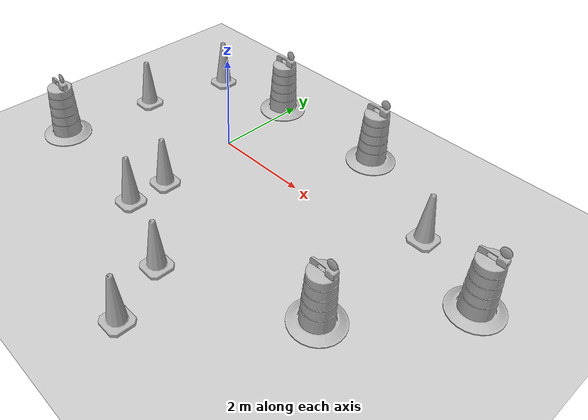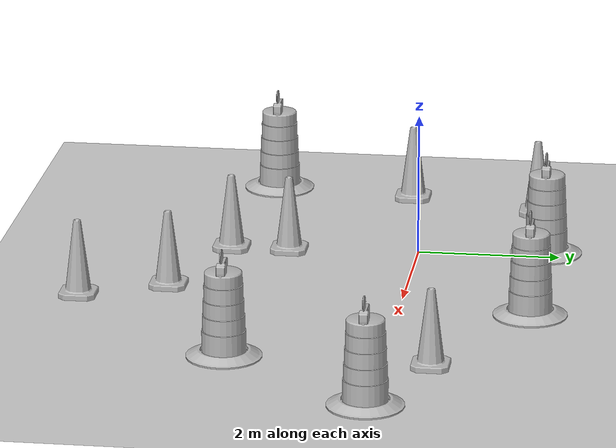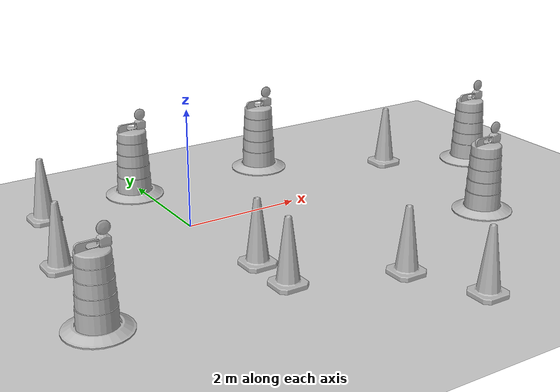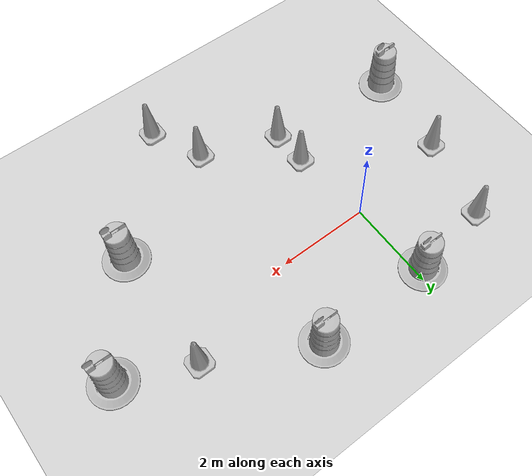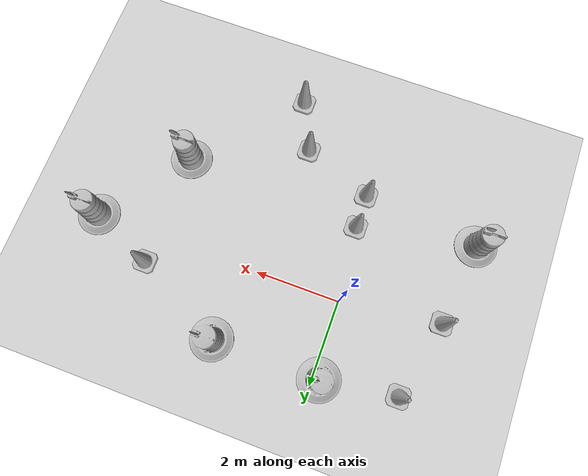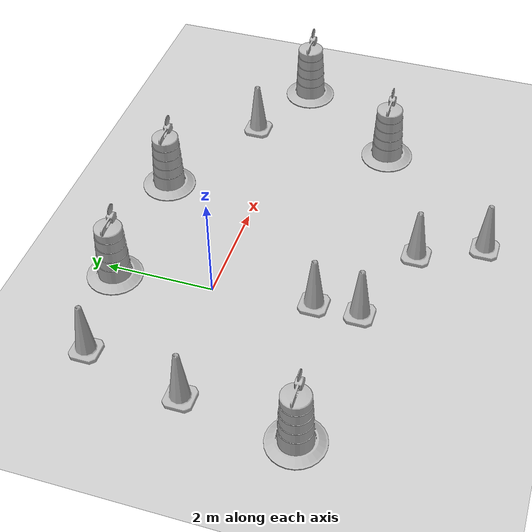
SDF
<sdf version="1.7">
 <world name="default">
  <light name="sun" type="directional">
   <pose>0 0 10 0 -0 0</pose>
   <diffuse>0.8 0.8 0.8 1</diffuse>
   <specular>0.2 0.2 0.2 1</specular>
   <attenuation>
    <range>1000</range>
    <constant>0.9</constant>
    <linear>0.01</linear>
    <quadratic>0.001</quadratic>
   </attenuation>
   <direction>-0.5 0.1 -0.9</direction>
   <spot><inner_angle>0</inner_angle><outer_angle>0</outer_angle><falloff>0</falloff></spot>
  </light>
  <model name="ground_plane">
   <static>1</static>
   <link name="link">
    <collision name="collision">
     <geometry><plane><normal>0 0 1</normal><size>100 100</size></plane></geometry>
     <surface>
      <contact><collide_bitmask>65535</collide_bitmask></contact>
      <friction><ode><mu>100</mu><mu2>50</mu2></ode></friction>
     </surface>
    </collision>
    <visual name="visual">
     <cast_shadows>0</cast_shadows>
     <geometry><plane><normal>0 0 1</normal><size>100 100</size></plane></geometry>
     <material>
      <script><uri>file://media/materials/scripts/gazebo.material</uri><name>Gazebo/Grey</name></script>
     </material>
    </visual>
   </link>
  </model>
  <gravity>0 0 -9.8</gravity>
  <magnetic_field>6e-06 2.3e-05 -4.2e-05</magnetic_field>
  <atmosphere type="adiabatic"/>
  <physics type="ode">
   <max_step_size>0.001</max_step_size>
   <real_time_factor>1</real_time_factor>
   <real_time_update_rate>1000</real_time_update_rate>
  </physics>
  <scene><ambient>0.4 0.4 0.4 1</ambient><background>0.7 0.7 0.7 1</background><shadows>1</shadows></scene>
  <audio><device>default</device></audio>
  <spherical_coordinates>
   <surface_model>EARTH_WGS84</surface_model>
   <latitude_deg>0</latitude_deg>
   <longitude_deg>0</longitude_deg>
   <elevation>0</elevation>
   <heading_deg>0</heading_deg>
  </spherical_coordinates>
  <model name="Construction Barrel">
   <link name="link">
    <inertial>
     <pose>0 0 0.4 0 -0 0</pose>
     <mass>500</mass>
     <inertia><ixx>51.2096</ixx><iyy>51.2096</iyy><izz>25</izz><ixy>0</ixy><ixz>0</ixz><iyz>0</iyz></inertia>
    </inertial>
    <collision name="collision">
     <geometry><mesh><uri>model://construction_barrel/meshes/construction_barrel.dae</uri></mesh></geometry>
    </collision>
    <visual name="visual">
     <geometry><mesh><uri>model://construction_barrel/meshes/construction_barrel.dae</uri></mesh></geometry>
    </visual>
   </link>
   <pose>2.4187 1.79149 0 0 0 -2.8e-05</pose>
  </model>
  <model name="Construction Barrel_0">
   <link name="link">
    <inertial>
     <pose>0 0 0.4 0 -0 0</pose>
     <mass>500</mass>
     <inertia><ixx>51.2096</ixx><iyy>51.2096</iyy><izz>25</izz><ixy>0</ixy><ixz>0</ixz><iyz>0</iyz></inertia>
    </inertial>
    <collision name="collision">
     <geometry><mesh><uri>model://construction_barrel/meshes/construction_barrel.dae</uri></mesh></geometry>
    </collision>
    <visual name="visual">
     <geometry><mesh><uri>model://construction_barrel/meshes/construction_barrel.dae</uri></mesh></geometry>
    </visual>
   </link>
   <pose>4.51723 -2.08358 0 0 0 -2.8e-05</pose>
  </model>
  <model name="Construction Cone">
   <link name="link">
    <collision name="collision">
     <geometry>
      <mesh><scale>10 10 10</scale><uri>model://construction_cone/meshes/construction_cone.dae</uri></mesh>
     </geometry>
    </collision>
    <visual name="visual">
     <geometry>
      <mesh><scale>10 10 10</scale><uri>model://construction_cone/meshes/construction_cone.dae</uri></mesh>
     </geometry>
    </visual>
    <inertial>
     <inertia><ixx>1</ixx><ixy>0</ixy><ixz>0</ixz><iyy>1</iyy><iyz>0</iyz><izz>1</izz></inertia>
     <mass>1</mass>
    </inertial>
   </link>
   <pose>1.87751 -3.27334 -0 0 -1e-06 0</pose>
  </model>
  <model name="Construction Cone_0">
   <link name="link">
    <collision name="collision">
     <geometry>
      <mesh><scale>10 10 10</scale><uri>model://construction_cone/meshes/construction_cone.dae</uri></mesh>
     </geometry>
    </collision>
    <visual name="visual">
     <geometry>
      <mesh><scale>10 10 10</scale><uri>model://construction_cone/meshes/construction_cone.dae</uri></mesh>
     </geometry>
    </visual>
    <inertial>
     <inertia><ixx>1</ixx><ixy>0</ixy><ixz>0</ixz><iyy>1</iyy><iyz>0</iyz><izz>1</izz></inertia>
     <mass>1</mass>
    </inertial>
   </link>
   <pose>0.177572 -1.82576 -0 0 -0 0</pose>
  </model>
  <model name="Construction Cone_1">
   <link name="link">
    <collision name="collision">
     <geometry>
      <mesh><scale>10 10 10</scale><uri>model://construction_cone/meshes/construction_cone.dae</uri></mesh>
     </geometry>
    </collision>
    <visual name="visual">
     <geometry>
      <mesh><scale>10 10 10</scale><uri>model://construction_cone/meshes/construction_cone.dae</uri></mesh>
     </geometry>
    </visual>
    <inertial>
     <inertia><ixx>1</ixx><ixy>0</ixy><ixz>0</ixz><iyy>1</iyy><iyz>0</iyz><izz>1</izz></inertia>
     <mass>1</mass>
    </inertial>
   </link>
   <pose>4.55618 0.666644 -0 0 -0 0</pose>
  </model>
  <model name="Construction Barrel_2">
   <link name="link">
    <inertial>
     <pose>0 0 0.4 0 -0 0</pose>
     <mass>500</mass>
     <inertia><ixx>51.2096</ixx><iyy>51.2096</iyy><izz>25</izz><ixy>0</ixy><ixz>0</ixz><iyz>0</iyz></inertia>
    </inertial>
    <collision name="collision">
     <geometry><mesh><uri>model://construction_barrel/meshes/construction_barrel.dae</uri></mesh></geometry>
    </collision>
    <visual name="visual">
     <geometry><mesh><uri>model://construction_barrel/meshes/construction_barrel.dae</uri></mesh></geometry>
    </visual>
   </link>
   <pose>-2.63711 -2.3653 1e-06 3e-06 2e-06 -3.1e-05</pose>
  </model>
  <model name="Construction Cone_2">
   <link name="link">
    <collision name="collision">
     <geometry>
      <mesh><scale>10 10 10</scale><uri>model://construction_cone/meshes/construction_cone.dae</uri></mesh>
     </geometry>
    </collision>
    <visual name="visual">
     <geometry>
      <mesh><scale>10 10 10</scale><uri>model://construction_cone/meshes/construction_cone.dae</uri></mesh>
     </geometry>
    </visual>
    <inertial>
     <inertia><ixx>1</ixx><ixy>0</ixy><ixz>0</ixz><iyy>1</iyy><iyz>0</iyz><izz>1</izz></inertia>
     <mass>1</mass>
    </inertial>
   </link>
   <pose>2.41357 -4.43857 -4e-06 -3e-06 0 0</pose>
  </model>
  <model name="Construction Cone_3">
   <link name="link">
    <collision name="collision">
     <geometry>
      <mesh><scale>10 10 10</scale><uri>model://construction_cone/meshes/construction_cone.dae</uri></mesh>
     </geometry>
    </collision>
    <visual name="visual">
     <geometry>
      <mesh><scale>10 10 10</scale><uri>model://construction_cone/meshes/construction_cone.dae</uri></mesh>
     </geometry>
    </visual>
    <inertial>
     <inertia><ixx>1</ixx><ixy>0</ixy><ixz>0</ixz><iyy>1</iyy><iyz>0</iyz><izz>1</izz></inertia>
     <mass>1</mass>
    </inertial>
   </link>
   <pose>0.188487 -2.64953 0 -0 -0 -0</pose>
  </model>
  <model name="Construction Barrel_3">
   <link name="link">
    <inertial>
     <pose>0 0 0.4 0 -0 0</pose>
     <mass>500</mass>
     <inertia><ixx>51.2096</ixx><iyy>51.2096</iyy><izz>25</izz><ixy>0</ixy><ixz>0</ixz><iyz>0</iyz></inertia>
    </inertial>
    <collision name="collision">
     <geometry><mesh><uri>model://construction_barrel/meshes/construction_barrel.dae</uri></mesh></geometry>
    </collision>
    <visual name="visual">
     <geometry><mesh><uri>model://construction_barrel/meshes/construction_barrel.dae</uri></mesh></geometry>
    </visual>
   </link>
   <pose>6.06102 -0.010786 0 0 0 -2.8e-05</pose>
  </model>
  <model name="Construction Cone_4">
   <link name="link">
    <collision name="collision">
     <geometry>
      <mesh><scale>10 10 10</scale><uri>model://construction_cone/meshes/construction_cone.dae</uri></mesh>
     </geometry>
    </collision>
    <visual name="visual">
     <geometry>
      <mesh><scale>10 10 10</scale><uri>model://construction_cone/meshes/construction_cone.dae</uri></mesh>
     </geometry>
    </visual>
    <inertial>
     <inertia><ixx>1</ixx><ixy>0</ixy><ixz>0</ixz><iyy>1</iyy><iyz>0</iyz><izz>1</izz></inertia>
     <mass>1</mass>
    </inertial>
   </link>
   <pose>-2.38877 -0.344604 0 -0 -0 -0</pose>
  </model>
  <model name="Construction Barrel_1">
   <link name="link">
    <inertial>
     <pose>0 0 0.4 0 -0 0</pose>
     <mass>500</mass>
     <inertia><ixx>51.2096</ixx><iyy>51.2096</iyy><izz>25</izz><ixy>0</ixy><ixz>0</ixz><iyz>0</iyz></inertia>
    </inertial>
    <collision name="collision">
     <geometry><mesh><uri>model://construction_barrel/meshes/construction_barrel.dae</uri></mesh></geometry>
    </collision>
    <visual name="visual">
     <geometry><mesh><uri>model://construction_barrel/meshes/construction_barrel.dae</uri></mesh></geometry>
    </visual>
   </link>
   <pose>-0.16385 1.79484 -1e-06 2e-06 -1e-06 -8e-06</pose>
  </model>
  <model name="Construction Cone_5">
   <link name="link">
    <collision name="collision">
     <geometry>
      <mesh><scale>10 10 10</scale><uri>model://construction_cone/meshes/construction_cone.dae</uri></mesh>
     </geometry>
    </collision>
    <visual name="visual">
     <geometry>
      <mesh><scale>10 10 10</scale><uri>model://construction_cone/meshes/construction_cone.dae</uri></mesh>
     </geometry>
    </visual>
    <inertial>
     <inertia><ixx>1</ixx><ixy>0</ixy><ixz>0</ixz><iyy>1</iyy><iyz>0</iyz><izz>1</izz></inertia>
     <mass>1</mass>
    </inertial>
   </link>
   <pose>-1.93358 1.52418 -0 0 -1e-06 0</pose>
  </model>
 </world>
</sdf>
